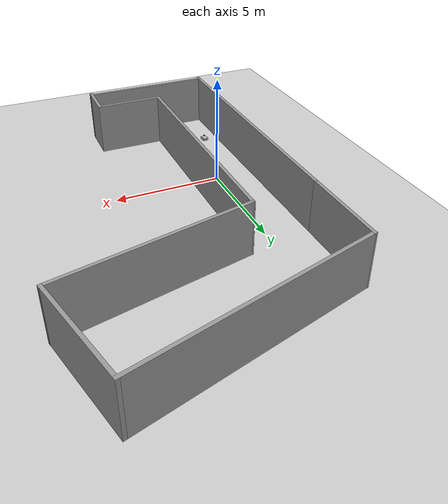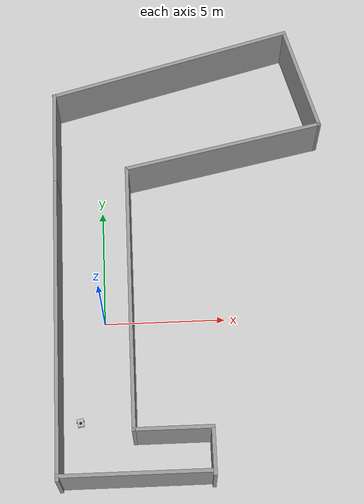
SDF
<sdf version="1.7">
 <world name="default">
  <light name="sun" type="directional">
   <pose>0 0 10 0 -0 0</pose>
   <diffuse>0.8 0.8 0.8 1</diffuse>
   <specular>0.2 0.2 0.2 1</specular>
   <attenuation>
    <range>1000</range>
    <constant>0.9</constant>
    <linear>0.01</linear>
    <quadratic>0.001</quadratic>
   </attenuation>
   <direction>-0.5 0.1 -0.9</direction>
   <spot><inner_angle>0</inner_angle><outer_angle>0</outer_angle><falloff>0</falloff></spot>
  </light>
  <model name="ground_plane">
   <static>1</static>
   <link name="link">
    <collision name="collision">
     <geometry><plane><normal>0 0 1</normal><size>100 100</size></plane></geometry>
     <surface><friction><ode><mu>100</mu><mu2>50</mu2></ode></friction></surface>
    </collision>
    <visual name="visual">
     <cast_shadows>0</cast_shadows>
     <geometry><plane><normal>0 0 1</normal><size>100 100</size></plane></geometry>
     <material>
      <script><uri>file://media/materials/scripts/gazebo.material</uri><name>Gazebo/Grey</name></script>
     </material>
    </visual>
   </link>
  </model>
  <gravity>0 0 -9.8</gravity>
  <magnetic_field>6e-06 2.3e-05 -4.2e-05</magnetic_field>
  <atmosphere type="adiabatic"/>
  <physics type="ode">
   <max_step_size>0.001</max_step_size>
   <real_time_factor>1</real_time_factor>
   <real_time_update_rate>1000</real_time_update_rate>
  </physics>
  <scene><ambient>0.4 0.4 0.4 1</ambient><background>0.7 0.7 0.7 1</background><shadows>1</shadows></scene>
  <audio><device>default</device></audio>
  <spherical_coordinates>
   <surface_model>EARTH_WGS84</surface_model>
   <latitude_deg>0</latitude_deg>
   <longitude_deg>0</longitude_deg>
   <elevation>0</elevation>
   <heading_deg>0</heading_deg>
  </spherical_coordinates>
  <model name="my_bot">
   <link name="base_link">
    <inertial>
     <pose>-0.067475 0 0.081098 0 -0 0</pose>
     <mass>0.61</mass>
     <inertia>
      <ixx>0.00561003</ixx>
      <ixy>0</ixy>
      <ixz>0.000453811</ixz>
      <iyy>0.00760348</iyy>
      <iyz>0</iyz>
      <izz>0.00797093</izz>
     </inertia>
    </inertial>
    <collision name="base_link_fixed_joint_lump__chassis_collision">
     <pose>-0.0585 0 0.059 0 -0 0</pose>
     <geometry><box><size>0.335 0.265 0.138</size></box></geometry>
    </collision>
    <collision name="base_link_fixed_joint_lump__caster_wheel_collision_1">
     <pose>-0.151 0 -0.023 0 -0 0</pose>
     <geometry><sphere><radius>0.01</radius></sphere></geometry>
     <surface><friction><ode><mu>0.001</mu><mu2>0.001</mu2></ode></friction></surface>
    </collision>
    <collision name="base_link_fixed_joint_lump__laser_frame_collision_2">
     <pose>-0.104 0 0.202 0 -0 0</pose>
     <geometry><cylinder><length>0.04</length><radius>0.05</radius></cylinder></geometry>
    </collision>
    <visual name="base_link_fixed_joint_lump__chassis_visual">
     <pose>-0.0585 0 0.059 0 -0 0</pose>
     <geometry><box><size>0.335 0.265 0.138</size></box></geometry>
     <material>
      <script><name>Gazebo/Teal</name><uri>file://media/materials/scripts/gazebo.material</uri></script>
     </material>
    </visual>
    <visual name="base_link_fixed_joint_lump__caster_wheel_visual_1">
     <pose>-0.151 0 -0.023 0 -0 0</pose>
     <geometry><sphere><radius>0.01</radius></sphere></geometry>
     <material>
      <script><name>Gazebo/White</name><uri>file://media/materials/scripts/gazebo.material</uri></script>
     </material>
    </visual>
    <visual name="base_link_fixed_joint_lump__face_link_visual_2">
     <pose>0.109 0.05 0.069 3.14159 1.57079 3.14159</pose>
     <geometry><cylinder><length>0.002</length><radius>0.01</radius></cylinder></geometry>
     <material>
      <script><name>Gazebo/Black</name><uri>file://media/materials/scripts/gazebo.material</uri></script>
     </material>
    </visual>
    <visual name="base_link_fixed_joint_lump__face_link_visual_3">
     <pose>0.109 -0.05 0.069 3.14159 1.57079 3.14159</pose>
     <geometry><cylinder><length>0.002</length><radius>0.01</radius></cylinder></geometry>
     <material>
      <script><name>Gazebo/Black</name><uri>file://media/materials/scripts/gazebo.material</uri></script>
     </material>
    </visual>
    <visual name="base_link_fixed_joint_lump__face_link_visual_4">
     <pose>0.098 0 0.059 0 1.5 0</pose>
     <geometry><cylinder><length>0.02</length><radius>0.05</radius></cylinder></geometry>
     <material>
      <script><name>Gazebo/Black</name><uri>file://media/materials/scripts/gazebo.material</uri></script>
     </material>
    </visual>
    <visual name="base_link_fixed_joint_lump__laser_frame_visual_5">
     <pose>-0.104 0 0.202 0 -0 0</pose>
     <geometry><cylinder><length>0.04</length><radius>0.05</radius></cylinder></geometry>
     <material>
      <script><name>Gazebo/Black</name><uri>file://media/materials/scripts/gazebo.material</uri></script>
     </material>
    </visual>
    <visual name="base_link_fixed_joint_lump__laser_frame_visual_6">
     <pose>-0.104 0 0.152 0 -0 0</pose>
     <geometry><cylinder><length>0.1</length><radius>0.01</radius></cylinder></geometry>
     <material>
      <script><name>Gazebo/Black</name><uri>file://media/materials/scripts/gazebo.material</uri></script>
     </material>
    </visual>
    <sensor name="laser" type="ray">
     <visualize>0</visualize>
     <update_rate>10</update_rate>
     <ray>
      <scan>
       <horizontal>
        <samples>360</samples>
        <min_angle>-3.14</min_angle>
        <max_angle>3.14</max_angle>
        <resolution>1</resolution>
       </horizontal>
       <vertical><samples>1</samples><min_angle>0</min_angle><max_angle>0</max_angle></vertical>
      </scan>
      <range><min>0.3</min><max>12</max></range>
     </ray>
     <plugin name="laser_controller" filename="libgazebo_ros_ray_sensor.so">
      <ros><argument>~/out:=scan</argument></ros>
      <output_type>sensor_msgs/LaserScan</output_type>
      <frame_name>laser_frame</frame_name>
     </plugin>
     <pose>-0.104 0 0.202 0 -0 0</pose>
    </sensor>
   </link>
   <joint name="left_wheel_joint" type="revolute">
    <pose relative_to="base_link">0 0.1485 0 -1.5708 0 0</pose>
    <parent>base_link</parent>
    <child>left_wheel</child>
    <axis>
     <xyz>0 0 1</xyz>
     <limit><lower>-1e+16</lower><upper>1e+16</upper></limit>
     <dynamics><spring_reference>0</spring_reference><spring_stiffness>0</spring_stiffness></dynamics>
    </axis>
   </joint>
   <link name="left_wheel">
    <pose relative_to="left_wheel_joint">0 0 0 0 -0 0</pose>
    <inertial>
     <mass>0.05</mass>
     <inertia>
      <ixx>1.64292e-05</ixx>
      <ixy>0</ixy>
      <ixz>0</ixz>
      <iyy>1.64292e-05</iyy>
      <iyz>0</iyz>
      <izz>2.7225e-05</izz>
     </inertia>
    </inertial>
    <collision name="left_wheel_collision">
     <geometry><sphere><radius>0.033</radius></sphere></geometry>
    </collision>
    <visual name="left_wheel_visual">
     <geometry><cylinder><length>0.026</length><radius>0.033</radius></cylinder></geometry>
     <material>
      <script><name>Gazebo/Purple</name><uri>file://media/materials/scripts/gazebo.material</uri></script>
     </material>
    </visual>
   </link>
   <joint name="right_wheel_joint" type="revolute">
    <pose relative_to="base_link">0 -0.1485 0 1.5708 -0 0</pose>
    <parent>base_link</parent>
    <child>right_wheel</child>
    <axis>
     <xyz>0 0 -1</xyz>
     <limit><lower>-1e+16</lower><upper>1e+16</upper></limit>
     <dynamics><spring_reference>0</spring_reference><spring_stiffness>0</spring_stiffness></dynamics>
    </axis>
   </joint>
   <link name="right_wheel">
    <pose relative_to="right_wheel_joint">0 0 0 0 -0 0</pose>
    <inertial>
     <mass>0.05</mass>
     <inertia>
      <ixx>1.64292e-05</ixx>
      <ixy>0</ixy>
      <ixz>0</ixz>
      <iyy>1.64292e-05</iyy>
      <iyz>0</iyz>
      <izz>2.7225e-05</izz>
     </inertia>
    </inertial>
    <collision name="right_wheel_collision">
     <geometry><sphere><radius>0.033</radius></sphere></geometry>
    </collision>
    <visual name="right_wheel_visual">
     <geometry><cylinder><length>0.026</length><radius>0.033</radius></cylinder></geometry>
     <material>
      <script><name>Gazebo/Purple</name><uri>file://media/materials/scripts/gazebo.material</uri></script>
     </material>
    </visual>
   </link>
   <static>0</static>
   <plugin name="gazebo_ros2_control" filename="libgazebo_ros2_control.so">
    <parameters>/home/su1jun/ros2_ws/install/capstone/share/capstone/config/my_controllers.yaml</parameters>
    <parameters>/home/su1jun/ros2_ws/install/capstone/share/capstone/config/gaz_ros2_ctl_use_sim.yaml</parameters>
   </plugin>
   <pose>-1.08806 -4.12739 0.032997 1.6e-05 1.8e-05 1.76384</pose>
  </model>
  <model name="Untitled_0">
   <pose>3.74293 2.64564 0 0 -0 0</pose>
   <link name="Wall_10">
    <collision name="Wall_10_Collision">
     <geometry><box><size>1.99222 0.15 2.5</size></box></geometry>
     <pose>0 0 1.25 0 -0 0</pose>
    </collision>
    <visual name="Wall_10_Visual">
     <pose>0 0 1.25 0 -0 0</pose>
     <geometry><box><size>1.99222 0.15 2.5</size></box></geometry>
     <material>
      <script><uri>file://media/materials/scripts/gazebo.material</uri><name>Gazebo/Grey</name></script>
      <ambient>1 1 1 1</ambient>
     </material>
     <meta><layer>0</layer></meta>
    </visual>
    <pose>0.50605 -8.64782 0 0 -0 -1.5708</pose>
   </link>
   <link name="Wall_11">
    <collision name="Wall_11_Collision">
     <geometry><box><size>6.25 0.15 2.5</size></box></geometry>
     <pose>0 0 1.25 0 -0 0</pose>
    </collision>
    <visual name="Wall_11_Visual">
     <pose>0 0 1.25 0 -0 0</pose>
     <geometry><box><size>6.25 0.15 2.5</size></box></geometry>
     <material>
      <script><uri>file://media/materials/scripts/gazebo.material</uri><name>Gazebo/Grey</name></script>
      <ambient>1 1 1 1</ambient>
     </material>
     <meta><layer>0</layer></meta>
    </visual>
    <pose>-2.54395 -9.44587 0 0 -0 3.14159</pose>
   </link>
   <link name="Wall_12">
    <collision name="Wall_12_Collision">
     <geometry><box><size>12.7422 0.15 2.5</size></box></geometry>
     <pose>0 0 1.25 0 -0 0</pose>
    </collision>
    <visual name="Wall_12_Visual">
     <pose>0 0 1.25 0 -0 0</pose>
     <geometry><box><size>12.7422 0.15 2.5</size></box></geometry>
     <material>
      <script><uri>file://media/materials/scripts/gazebo.material</uri><name>Gazebo/Grey</name></script>
      <ambient>1 1 1 1</ambient>
     </material>
     <meta><layer>0</layer></meta>
    </visual>
    <pose>-5.59395 -3.27282 0 0 -0 1.5708</pose>
   </link>
   <link name="Wall_13">
    <collision name="Wall_13_Collision">
     <geometry><box><size>4 0.15 2.5</size></box></geometry>
     <pose>0 0 1.25 0 -0 0</pose>
    </collision>
    <visual name="Wall_13_Visual">
     <pose>0 0 1.25 0 -0 0</pose>
     <geometry><box><size>4 0.15 2.5</size></box></geometry>
     <material>
      <script><uri>file://media/materials/scripts/gazebo.material</uri><name>Gazebo/Grey</name></script>
      <ambient>1 1 1 1</ambient>
     </material>
     <meta><layer>0</layer></meta>
    </visual>
    <pose>-5.59395 4.94829 0 0 -0 1.5708</pose>
   </link>
   <link name="Wall_14">
    <collision name="Wall_14_Collision">
     <geometry><box><size>10.5 0.15 2.5</size></box></geometry>
     <pose>0 0 1.25 0 -0 0</pose>
    </collision>
    <visual name="Wall_14_Visual">
     <pose>0 0 1.25 0 -0 0</pose>
     <geometry><box><size>10.5 0.15 2.5</size></box></geometry>
     <material>
      <script><uri>file://media/materials/scripts/gazebo.material</uri><name>Gazebo/Grey</name></script>
      <ambient>1 1 1 1</ambient>
     </material>
     <meta><layer>0</layer></meta>
    </visual>
    <pose>-0.595284 8.21268 0 0 -0 0.261799</pose>
   </link>
   <link name="Wall_15">
    <collision name="Wall_15_Collision">
     <geometry><box><size>4.75 0.15 2.5</size></box></geometry>
     <pose>0 0 1.25 0 -0 0</pose>
    </collision>
    <visual name="Wall_15_Visual">
     <pose>0 0 1.25 0 -0 0</pose>
     <geometry><box><size>4.75 0.15 2.5</size></box></geometry>
     <material>
      <script><uri>file://media/materials/scripts/gazebo.material</uri><name>Gazebo/Grey</name></script>
      <ambient>1 1 1 1</ambient>
     </material>
     <meta><layer>0</layer></meta>
    </visual>
    <pose>4.99867 7.33044 0 0 -0 -1.309</pose>
   </link>
   <link name="Wall_16">
    <collision name="Wall_16_Collision">
     <geometry><box><size>8.51981 0.15 2.5</size></box></geometry>
     <pose>0 0 1.25 0 -0 0</pose>
    </collision>
    <visual name="Wall_16_Visual">
     <pose>0 0 1.25 0 -0 0</pose>
     <geometry><box><size>8.51981 0.15 2.5</size></box></geometry>
     <material>
      <script><uri>file://media/materials/scripts/gazebo.material</uri><name>Gazebo/Grey</name></script>
      <ambient>1 1 1 1</ambient>
     </material>
     <meta><layer>0</layer></meta>
    </visual>
    <pose>1.5 4.24106 0 0 -0 -2.93272</pose>
   </link>
   <link name="Wall_5">
    <collision name="Wall_5_Collision">
     <geometry><box><size>11.25 0.15 2.5</size></box></geometry>
     <pose>0 0 1.25 0 -0 0</pose>
    </collision>
    <visual name="Wall_5_Visual">
     <pose>0 0 1.25 0 -0 0</pose>
     <geometry><box><size>11.25 0.15 2.5</size></box></geometry>
     <material>
      <script><uri>file://media/materials/scripts/gazebo.material</uri><name>Gazebo/Grey</name></script>
      <ambient>1 1 1 1</ambient>
     </material>
     <meta><layer>0</layer></meta>
    </visual>
    <pose>-2.59395 -2.17671 0 0 -0 -1.5708</pose>
   </link>
   <link name="Wall_9">
    <collision name="Wall_9_Collision">
     <geometry><box><size>3.25 0.15 2.5</size></box></geometry>
     <pose>0 0 1.25 0 -0 0</pose>
    </collision>
    <visual name="Wall_9_Visual">
     <pose>0 0 1.25 0 -0 0</pose>
     <geometry><box><size>3.25 0.15 2.5</size></box></geometry>
     <material>
      <script><uri>file://media/materials/scripts/gazebo.material</uri><name>Gazebo/Grey</name></script>
      <ambient>1 1 1 1</ambient>
     </material>
     <meta><layer>0</layer></meta>
    </visual>
    <pose>-1.04395 -7.7267 0 0 -0 0</pose>
   </link>
   <static>1</static>
  </model>
 </world>
</sdf>
